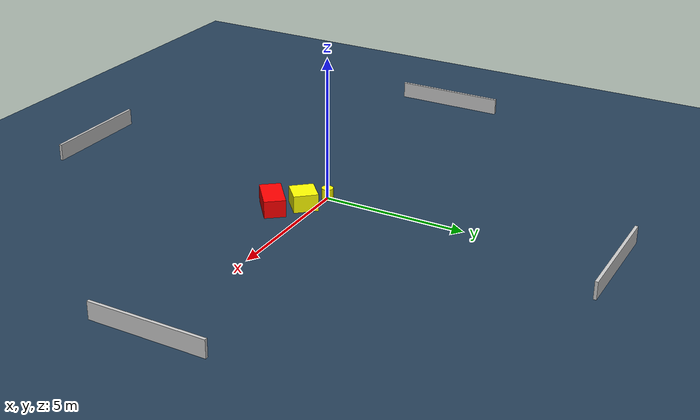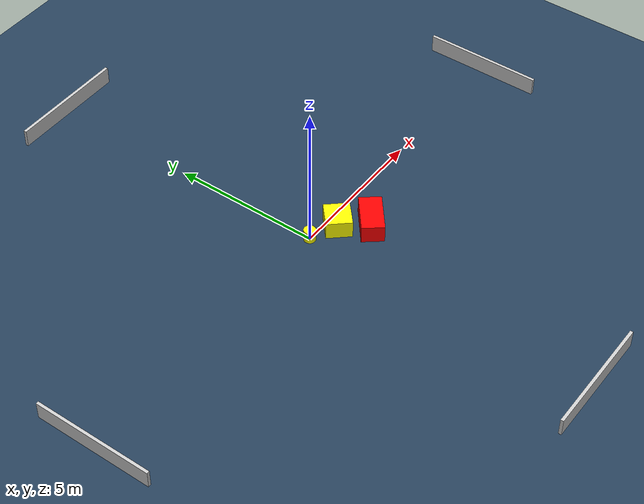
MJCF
<?xml version="1.0" ?>
<mujoco model="generated_environment">
  <option timestep="0.01" integrator="RK4" cone="elliptic"/>
  <default>
    <geom density="1"/>
  </default>
  <asset>
    <texture builtin="gradient" height="3072" name="skybox" rgb1="0.3 0.5 0.7" rgb2="0 0 0" type="skybox" width="512"/>
    <texture builtin="checker" height="300" name="groundplane" rgb1="0.2 0.3 0.4" rgb2="0.1 0.2 0.3" type="2d" width="300"/>
    <material name="groundplane" reflectance="0.2" texrepeat="5 5" texture="groundplane"/>
  </asset>
  <worldbody>
    <light dir="0 0 -1" directional="true" pos="0 0 1.5"/>
    <geom condim="3" friction="0.5 0.005 0.001" material="groundplane" name="floor" pos="0 0 0" size="0 0 0.05" type="plane"/>
    <body name="walls">
      <geom name="wall_1" condim="4" pos="-10.0 0.0 0.3" rgba="0.800000011920929 0.800000011920929 0.800000011920929 1.0" size="0.05 2.0 0.3" type="box"/>
      <geom name="wall_2" condim="4" pos="10.0 0.0 0.3" rgba="0.800000011920929 0.800000011920929 0.800000011920929 1.0" size="0.05 2.0 0.3" type="box"/>
      <geom name="wall_3" condim="4" pos="0.0 -10.0 0.3" rgba="0.800000011920929 0.800000011920929 0.800000011920929 1.0" size="2.0 0.05 0.3" type="box"/>
      <geom name="wall_4" condim="4" pos="0.0 10.0 0.3" rgba="0.800000011920929 0.800000011920929 0.800000011920929 1.0" size="2.0 0.05 0.3" type="box"/>
    </body>
    <body name="robot">
      <joint name="joint_x" type="slide" pos="0 0 0" axis="1 0 0"/>
      <joint name="joint_y" type="slide" pos="0 0 0" axis="0 1 0"/>
      <geom name="robot" type="cylinder" pos="0.0 0.0 0.2" size="0.2 0.2 0.0" mass="5.0" friction="1.0 0.005 0.0001" condim="4" rgba="1.0 1.0 0.0 1.0"/>
    </body>
    <body name="obstacle_1_movable">
      <geom name="obstacle_1_movable" condim="4" pos="0.9187701982365545 -0.39745375152841844 0.3" euler="0 0 41.78873752790601" friction="0.0 0.005 0.001" rgba="1.0 1.0 0.0 1.0" size="0.4448945821053424 0.4215546449524081 0.3" type="box" mass="0.1"/>
      <joint type="free"/>
    </body>
    <body name="obstacle_2_static">
      <geom name="obstacle_2_static" condim="4" pos="1.5817466833425264 -1.2057750603087882 0.3" euler="0 0 308.9916267067373" friction="0.0 0.005 0.001" rgba="1.0 0.0 0.0 1.0" size="0.3680945203693283 0.6807992835581684 0.3" type="box"/>
    </body>
  </worldbody>
  <actuator>
    <motor name="actuator_x" joint="joint_x" gear="1" ctrlrange="-1 1"/>
    <motor name="actuator_y" joint="joint_y" gear="1" ctrlrange="-1 1"/>
  </actuator>
</mujoco>
